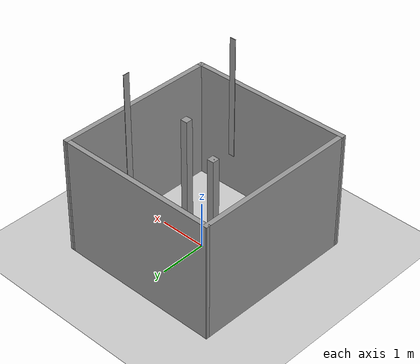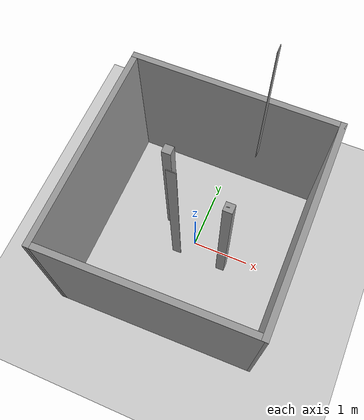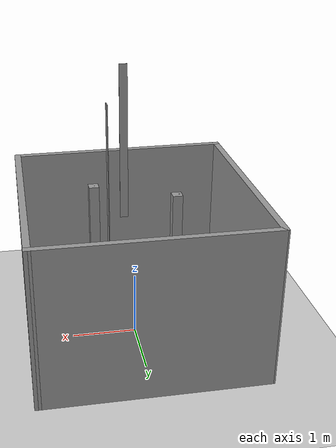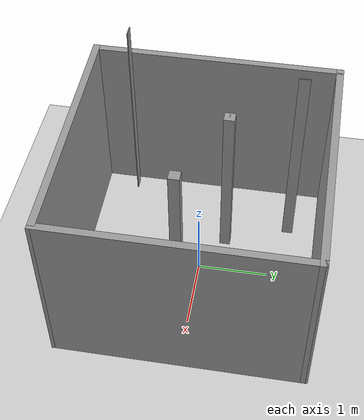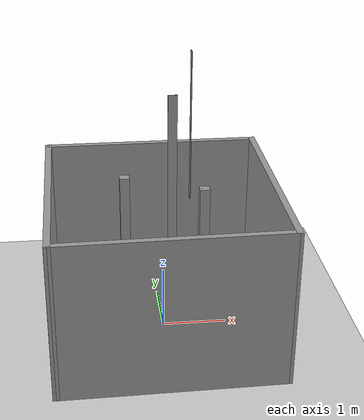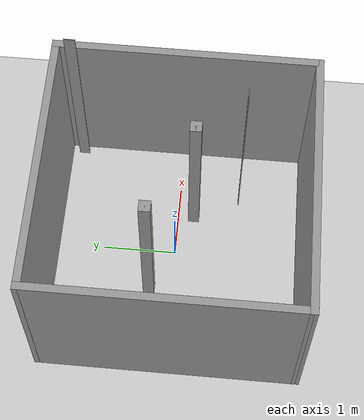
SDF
<sdf version="1.6">
 <world name="default">
  <light name="sun" type="directional">
   <pose>0 0 10 0 -0 0</pose>
   <diffuse>0.8 0.8 0.8 1</diffuse>
   <specular>0.1 0.1 0.1 1</specular>
   <attenuation>
    <range>1000</range>
    <constant>0.9</constant>
    <linear>0.01</linear>
    <quadratic>0.001</quadratic>
   </attenuation>
   <direction>-0.5 0.5 -1</direction>
  </light>
  <model name="ground_plane">
   <static>1</static>
   <link name="link">
    <collision name="collision">
     <geometry><plane><normal>0 0 1</normal><size>100 100</size></plane></geometry>
     <surface><friction><ode><mu>100</mu><mu2>50</mu2></ode></friction></surface>
    </collision>
    <visual name="visual">
     <cast_shadows>0</cast_shadows>
     <geometry><plane><normal>0 0 1</normal><size>100 100</size></plane></geometry>
     <material>
      <script><uri>file://media/materials/scripts/gazebo.material</uri><name>Gazebo/Grey</name></script>
     </material>
    </visual>
   </link>
  </model>
  <physics name="default_physics" default="0" type="ode">
   <real_time_update_rate>1000</real_time_update_rate>
   <max_step_size>0.001</max_step_size>
   <real_time_factor>1</real_time_factor>
   <ode>
    <solver>
     <type>quick</type>
     <iters>150</iters>
     <precon_iters>0</precon_iters>
     <sor>1.4</sor>
     <use_dynamic_moi_rescaling>1</use_dynamic_moi_rescaling>
    </solver>
    <constraints>
     <cfm>1e-05</cfm>
     <erp>0.2</erp>
     <contact_max_correcting_vel>2000</contact_max_correcting_vel>
     <contact_surface_layer>0.01</contact_surface_layer>
    </constraints>
   </ode>
  </physics>
  <gravity>0 0 -9.8</gravity>
  <magnetic_field>6e-06 2.3e-05 -4.2e-05</magnetic_field>
  <atmosphere type="adiabatic"/>
  <scene><ambient>0.4 0.4 0.4 1</ambient><background>0.7 0.7 0.7 1</background><shadows>1</shadows></scene>
  <spherical_coordinates>
   <surface_model>EARTH_WGS84</surface_model>
   <latitude_deg>0</latitude_deg>
   <longitude_deg>0</longitude_deg>
   <elevation>0</elevation>
   <heading_deg>0</heading_deg>
  </spherical_coordinates>
  <model name="world10">
   <pose>-0.028846 -0.038954 0 0 -0 0</pose>
   <link name="Wall_0">
    <collision name="Wall_0_Collision">
     <geometry><box><size>3.49838 0.1 2.5</size></box></geometry>
     <pose>0 0 1.25 0 -0 0</pose>
    </collision>
    <visual name="Wall_0_Visual">
     <pose>0 0 1.25 0 -0 0</pose>
     <geometry><box><size>3.49838 0.1 2.5</size></box></geometry>
     <material>
      <script><uri>file://media/materials/scripts/gazebo.material</uri><name>Gazebo/Grey</name></script>
      <ambient>1 1 1 1</ambient>
     </material>
    </visual>
    <pose>0 -1.69964 0 0 -0 0.015008</pose>
   </link>
   <link name="Wall_1">
    <collision name="Wall_1_Collision">
     <geometry><box><size>3.5 0.1 2.5</size></box></geometry>
     <pose>0 0 1.25 0 -0 0</pose>
    </collision>
    <visual name="Wall_1_Visual">
     <pose>0 0 1.25 0 -0 0</pose>
     <geometry><box><size>3.5 0.1 2.5</size></box></geometry>
     <material>
      <script><uri>file://media/materials/scripts/gazebo.material</uri><name>Gazebo/Grey</name></script>
      <ambient>1 1 1 1</ambient>
     </material>
    </visual>
    <pose>1.699 0.025865 0 0 -0 1.5708</pose>
   </link>
   <link name="Wall_2">
    <collision name="Wall_2_Collision">
     <geometry><box><size>3.498 0.1 2.5</size></box></geometry>
     <pose>0 0 1.25 0 -0 0</pose>
    </collision>
    <visual name="Wall_2_Visual">
     <pose>0 0 1.25 0 -0 0</pose>
     <geometry><box><size>3.498 0.1 2.5</size></box></geometry>
     <material>
      <script><uri>file://media/materials/scripts/gazebo.material</uri><name>Gazebo/Grey</name></script>
      <ambient>1 1 1 1</ambient>
     </material>
    </visual>
    <pose>0 1.72537 0 0 0 -3.1413</pose>
   </link>
   <link name="Wall_3">
    <collision name="Wall_3_Collision">
     <geometry><box><size>3.55 0.1 2.5</size></box></geometry>
     <pose>0 0 1.25 0 -0 0</pose>
    </collision>
    <visual name="Wall_3_Visual">
     <pose>0 0 1.25 0 -0 0</pose>
     <geometry><box><size>3.55 0.1 2.5</size></box></geometry>
     <material>
      <script><uri>file://media/materials/scripts/gazebo.material</uri><name>Gazebo/Grey</name></script>
      <ambient>1 1 1 1</ambient>
     </material>
    </visual>
    <pose>-1.699 -0.000135 0 0 0 -1.5708</pose>
   </link>
   <static>1</static>
  </model>
  <model name="gongdi">
   <pose>0.037556 -0.810078 1.67297 0 -0 0</pose>
   <link name="Wall_0">
    <collision name="Wall_0_Collision">
     <geometry><box><size>0.13 0.01 2.5</size></box></geometry>
     <pose>0 0 1.25 0 -0 0</pose>
    </collision>
    <visual name="Wall_0_Visual">
     <pose>0 0 1.25 0 -0 0</pose>
     <geometry><box><size>0.13 0.01 2.5</size></box></geometry>
     <material>
      <script><uri>file://media/materials/scripts/gazebo.material</uri><name>Gazebo/Grey</name></script>
      <ambient>1 1 1 1</ambient>
     </material>
    </visual>
   </link>
   <static>1</static>
  </model>
  <model name="gongdi_clone">
   <pose>0.567741 1.22559 1.67297 0 -0 1.57</pose>
   <link name="Wall_0">
    <collision name="Wall_0_Collision">
     <geometry><box><size>0.13 0.01 2.5</size></box></geometry>
     <pose>0 0 1.25 0 -0 0</pose>
    </collision>
    <visual name="Wall_0_Visual">
     <pose>0 0 1.25 0 -0 0</pose>
     <geometry><box><size>0.13 0.01 2.5</size></box></geometry>
     <material>
      <script><uri>file://media/materials/scripts/gazebo.material</uri><name>Gazebo/Grey</name></script>
      <ambient>1 1 1 1</ambient>
     </material>
    </visual>
   </link>
   <static>1</static>
  </model>
  <model name="building">
   <pose>0.593402 -0.21381 0 0 -0 0</pose>
   <link name="Wall_2">
    <collision name="Wall_2_Collision">
     <geometry><box><size>0.05 0.01 2.5</size></box></geometry>
     <pose>0 0 1.25 0 -0 0</pose>
    </collision>
    <visual name="Wall_2_Visual">
     <pose>0 0 1.25 0 -0 0</pose>
     <geometry><box><size>0.05 0.01 2.5</size></box></geometry>
     <material>
      <script><uri>file://media/materials/scripts/gazebo.material</uri><name>Gazebo/Grey</name></script>
      <ambient>1 1 1 1</ambient>
     </material>
    </visual>
    <pose>-0.02 0 0 0 -0 0</pose>
   </link>
   <link name="Wall_3">
    <collision name="Wall_3_Collision">
     <geometry><box><size>0.15 0.15 2.5</size></box></geometry>
     <pose>0 0 1.25 0 -0 0</pose>
    </collision>
    <visual name="Wall_3_Visual">
     <pose>0 0 1.25 0 -0 0</pose>
     <geometry><box><size>0.15 0.15 2.5</size></box></geometry>
     <material>
      <script><uri>file://media/materials/scripts/gazebo.material</uri><name>Gazebo/Grey</name></script>
      <ambient>1 1 1 1</ambient>
     </material>
    </visual>
   </link>
   <static>1</static>
  </model>
  <model name="building_clone">
   <pose>-0.568159 0.31117 0 0 -0 0</pose>
   <link name="Wall_2">
    <collision name="Wall_2_Collision">
     <geometry><box><size>0.05 0.01 2.5</size></box></geometry>
     <pose>0 0 1.25 0 -0 0</pose>
    </collision>
    <visual name="Wall_2_Visual">
     <pose>0 0 1.25 0 -0 0</pose>
     <geometry><box><size>0.05 0.01 2.5</size></box></geometry>
     <material>
      <script><uri>file://media/materials/scripts/gazebo.material</uri><name>Gazebo/Grey</name></script>
      <ambient>1 1 1 1</ambient>
     </material>
    </visual>
    <pose>-0.02 0 0 0 -0 0</pose>
   </link>
   <link name="Wall_3">
    <collision name="Wall_3_Collision">
     <geometry><box><size>0.15 0.15 2.5</size></box></geometry>
     <pose>0 0 1.25 0 -0 0</pose>
    </collision>
    <visual name="Wall_3_Visual">
     <pose>0 0 1.25 0 -0 0</pose>
     <geometry><box><size>0.15 0.15 2.5</size></box></geometry>
     <material>
      <script><uri>file://media/materials/scripts/gazebo.material</uri><name>Gazebo/Grey</name></script>
      <ambient>1 1 1 1</ambient>
     </material>
    </visual>
   </link>
   <static>1</static>
  </model>
 </world>
</sdf>
